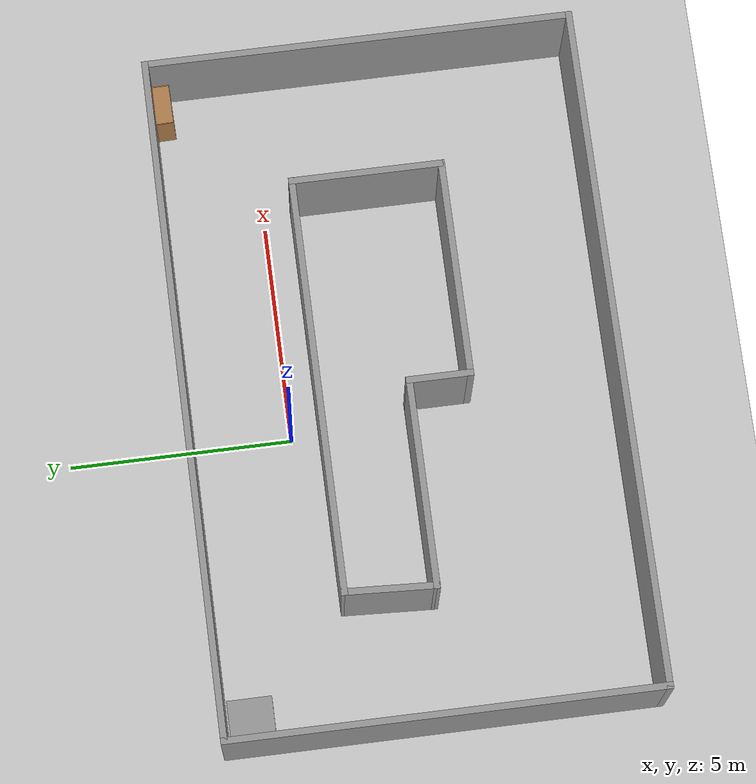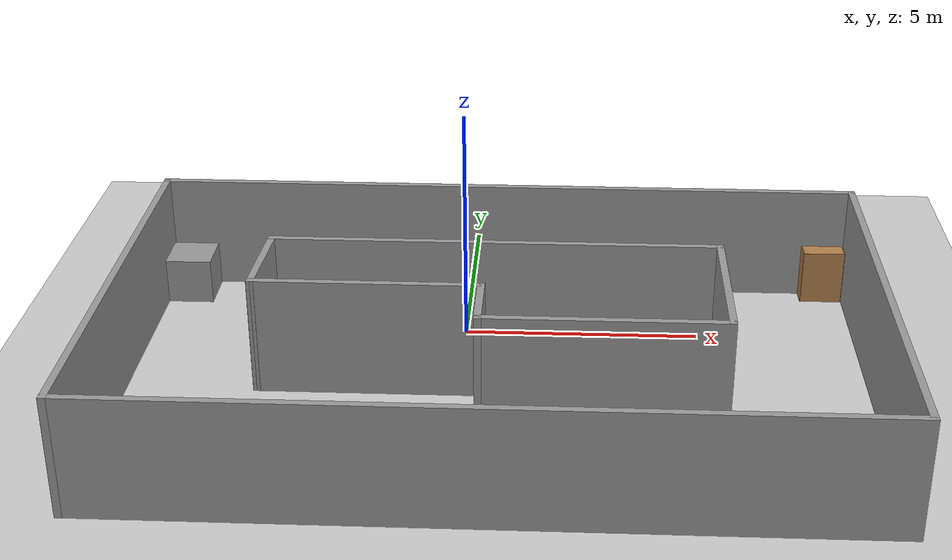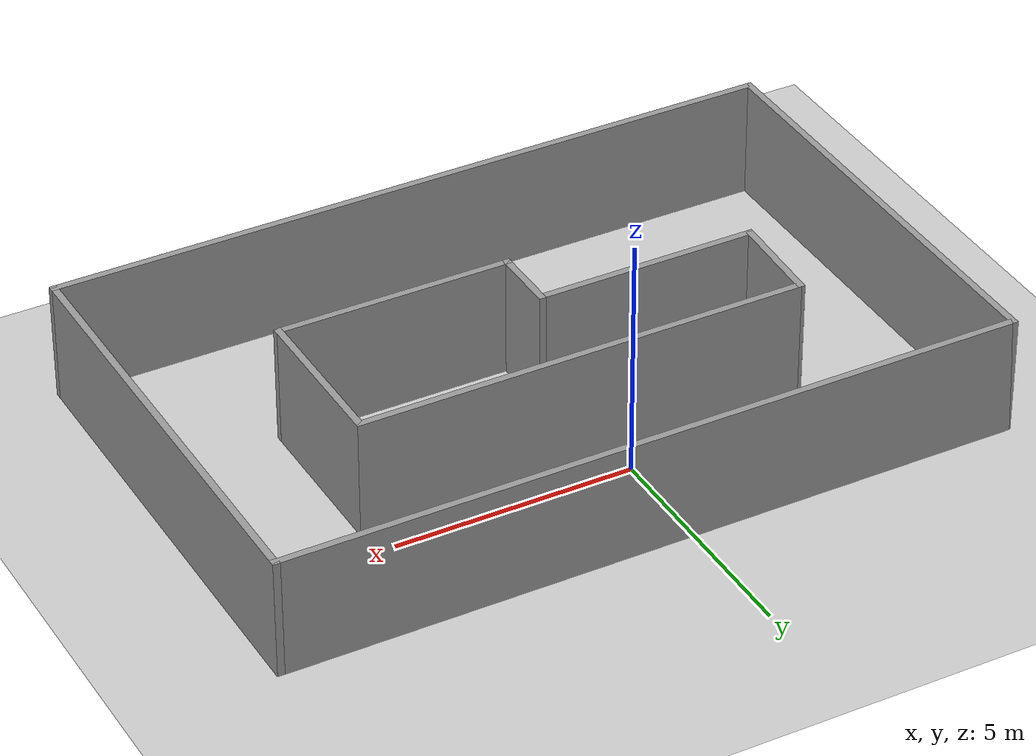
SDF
<sdf version="1.6">
 <world name="default">
  <light name="sun" type="directional">
   <pose>0 0 10 0 -0 0</pose>
   <diffuse>0.8 0.8 0.8 1</diffuse>
   <specular>0.1 0.1 0.1 1</specular>
   <attenuation>
    <range>1000</range>
    <constant>0.9</constant>
    <linear>0.01</linear>
    <quadratic>0.001</quadratic>
   </attenuation>
   <direction>-0.5 0.5 -1</direction>
  </light>
  <model name="ground_plane">
   <static>1</static>
   <link name="link">
    <collision name="collision">
     <geometry><plane><normal>0 0 1</normal><size>100 100</size></plane></geometry>
     <surface><friction><ode><mu>100</mu><mu2>50</mu2></ode></friction></surface>
    </collision>
    <visual name="visual">
     <cast_shadows>0</cast_shadows>
     <geometry><plane><normal>0 0 1</normal><size>100 100</size></plane></geometry>
     <material>
      <script><uri>file://media/materials/scripts/gazebo.material</uri><name>Gazebo/Grey</name></script>
     </material>
    </visual>
   </link>
  </model>
  <gravity>0 0 -9.8</gravity>
  <magnetic_field>6e-06 2.3e-05 -4.2e-05</magnetic_field>
  <atmosphere type="adiabatic"/>
  <physics name="default_physics" default="0" type="ode">
   <max_step_size>0.001</max_step_size>
   <real_time_factor>1</real_time_factor>
   <real_time_update_rate>1000</real_time_update_rate>
  </physics>
  <scene><ambient>0.4 0.4 0.4 1</ambient><background>0.7 0.7 0.7 1</background><shadows>1</shadows></scene>
  <spherical_coordinates>
   <surface_model>EARTH_WGS84</surface_model>
   <latitude_deg>0</latitude_deg>
   <longitude_deg>0</longitude_deg>
   <elevation>0</elevation>
   <heading_deg>0</heading_deg>
  </spherical_coordinates>
  <model name="Untitled">
   <pose>0.777392 -2.53799 0 0 -0 0</pose>
   <link name="Wall_49">
    <collision name="Wall_49_Collision">
     <geometry><box><size>15.5 0.15 2.5</size></box></geometry>
     <pose>0 0 1.25 0 -0 0</pose>
    </collision>
    <visual name="Wall_49_Visual">
     <pose>0 0 1.25 0 -0 0</pose>
     <geometry><box><size>15.5 0.15 2.5</size></box></geometry>
     <material>
      <script><uri>file://media/materials/scripts/gazebo.material</uri><name>Gazebo/Grey</name></script>
      <ambient>1 1 1 1</ambient>
     </material>
    </visual>
    <pose>0 4.8 0 0 -0 0</pose>
   </link>
   <link name="Wall_59">
    <collision name="Wall_59_Collision">
     <geometry><box><size>9.75 0.15 2.5</size></box></geometry>
     <pose>0 0 1.25 0 -0 0</pose>
    </collision>
    <visual name="Wall_59_Visual">
     <pose>0 0 1.25 0 -0 0</pose>
     <geometry><box><size>9.75 0.15 2.5</size></box></geometry>
     <material>
      <script><uri>file://media/materials/scripts/gazebo.material</uri><name>Gazebo/Grey</name></script>
      <ambient>1 1 1 1</ambient>
     </material>
    </visual>
    <pose>7.675 0 0 0 0 -1.5708</pose>
   </link>
   <link name="Wall_60">
    <collision name="Wall_60_Collision">
     <geometry><box><size>15.5 0.15 2.5</size></box></geometry>
     <pose>0 0 1.25 0 -0 0</pose>
    </collision>
    <visual name="Wall_60_Visual">
     <pose>0 0 1.25 0 -0 0</pose>
     <geometry><box><size>15.5 0.15 2.5</size></box></geometry>
     <material>
      <script><uri>file://media/materials/scripts/gazebo.material</uri><name>Gazebo/Grey</name></script>
      <ambient>1 1 1 1</ambient>
     </material>
    </visual>
    <pose>0 -4.8 0 0 -0 3.14159</pose>
   </link>
   <link name="Wall_61">
    <collision name="Wall_61_Collision">
     <geometry><box><size>9.75 0.15 2.5</size></box></geometry>
     <pose>0 0 1.25 0 -0 0</pose>
    </collision>
    <visual name="Wall_61_Visual">
     <pose>0 0 1.25 0 -0 0</pose>
     <geometry><box><size>9.75 0.15 2.5</size></box></geometry>
     <material>
      <script><uri>file://media/materials/scripts/gazebo.material</uri><name>Gazebo/Grey</name></script>
      <ambient>1 1 1 1</ambient>
     </material>
    </visual>
    <pose>-7.675 0 0 0 -0 1.5708</pose>
   </link>
   <link name="Wall_70">
    <collision name="Wall_70_Collision">
     <geometry><box><size>9.5 0.15 2.5</size></box></geometry>
     <pose>0 0 1.25 0 -0 0</pose>
    </collision>
    <visual name="Wall_70_Visual">
     <pose>0 0 1.25 0 -0 0</pose>
     <geometry><box><size>9.5 0.15 2.5</size></box></geometry>
     <material>
      <script><uri>file://media/materials/scripts/gazebo.material</uri><name>Gazebo/Grey</name></script>
      <ambient>1 1 1 1</ambient>
     </material>
    </visual>
    <pose>-0.123556 1.85853 0 0 -0 0</pose>
   </link>
   <link name="Wall_71">
    <collision name="Wall_71_Collision">
     <geometry><box><size>3.5 0.15 2.5</size></box></geometry>
     <pose>0 0 1.25 0 -0 0</pose>
    </collision>
    <visual name="Wall_71_Visual">
     <pose>0 0 1.25 0 -0 0</pose>
     <geometry><box><size>3.5 0.15 2.5</size></box></geometry>
     <material>
      <script><uri>file://media/materials/scripts/gazebo.material</uri><name>Gazebo/Grey</name></script>
      <ambient>1 1 1 1</ambient>
     </material>
    </visual>
    <pose>4.55144 0.183531 0 0 0 -1.5708</pose>
   </link>
   <link name="Wall_72">
    <collision name="Wall_72_Collision">
     <geometry><box><size>5 0.15 2.5</size></box></geometry>
     <pose>0 0 1.25 0 -0 0</pose>
    </collision>
    <visual name="Wall_72_Visual">
     <pose>0 0 1.25 0 -0 0</pose>
     <geometry><box><size>5 0.15 2.5</size></box></geometry>
     <material>
      <script><uri>file://media/materials/scripts/gazebo.material</uri><name>Gazebo/Grey</name></script>
      <ambient>1 1 1 1</ambient>
     </material>
    </visual>
    <pose>2.12644 -1.49147 0 0 -0 3.14159</pose>
   </link>
   <link name="Wall_73">
    <collision name="Wall_73_Collision">
     <geometry><box><size>1.5 0.15 2.5</size></box></geometry>
     <pose>0 0 1.25 0 -0 0</pose>
    </collision>
    <visual name="Wall_73_Visual">
     <pose>0 0 1.25 0 -0 0</pose>
     <geometry><box><size>1.5 0.15 2.5</size></box></geometry>
     <material>
      <script><uri>file://media/materials/scripts/gazebo.material</uri><name>Gazebo/Grey</name></script>
      <ambient>1 1 1 1</ambient>
     </material>
    </visual>
    <pose>-0.298556 -0.816469 0 0 -0 1.5708</pose>
   </link>
   <link name="Wall_74">
    <collision name="Wall_74_Collision">
     <geometry><box><size>4.75 0.15 2.5</size></box></geometry>
     <pose>0 0 1.25 0 -0 0</pose>
    </collision>
    <visual name="Wall_74_Visual">
     <pose>0 0 1.25 0 -0 0</pose>
     <geometry><box><size>4.75 0.15 2.5</size></box></geometry>
     <material>
      <script><uri>file://media/materials/scripts/gazebo.material</uri><name>Gazebo/Grey</name></script>
      <ambient>1 1 1 1</ambient>
     </material>
    </visual>
    <pose>-2.59856 -0.141469 0 0 -0 3.14159</pose>
   </link>
   <link name="Wall_75">
    <collision name="Wall_75_Collision">
     <geometry><box><size>2.1525 0.15 2.5</size></box></geometry>
     <pose>0 0 1.25 0 -0 0</pose>
    </collision>
    <visual name="Wall_75_Visual">
     <pose>0 0 1.25 0 -0 0</pose>
     <geometry><box><size>2.1525 0.15 2.5</size></box></geometry>
     <material>
      <script><uri>file://media/materials/scripts/gazebo.material</uri><name>Gazebo/Grey</name></script>
      <ambient>1 1 1 1</ambient>
     </material>
    </visual>
    <pose>-4.84856 0.858531 0 0 -0 1.52084</pose>
   </link>
   <static>1</static>
  </model>
  <model name="unit_box_0">
   <pose>-6.32262 1.63827 0.499995 1e-05 -0 3e-06</pose>
   <link name="link">
    <inertial>
     <mass>1</mass>
     <inertia>
      <ixx>0.166667</ixx>
      <ixy>0</ixy>
      <ixz>0</ixz>
      <iyy>0.166667</iyy>
      <iyz>0</iyz>
      <izz>0.166667</izz>
     </inertia>
    </inertial>
    <collision name="collision"><geometry><box><size>1 1 1</size></box></geometry></collision>
    <visual name="visual">
     <geometry><box><size>1 1 1</size></box></geometry>
     <material>
      <script><name>Gazebo/Grey</name><uri>file://media/materials/scripts/gazebo.material</uri></script>
     </material>
    </visual>
   </link>
  </model>
  <model name="bookshelf">
   <static>1</static>
   <link name="link">
    <inertial><mass>1</mass></inertial>
    <collision name="back">
     <pose>0 0.005 0.6 0 -0 0</pose>
     <geometry><box><size>0.9 0.01 1.2</size></box></geometry>
    </collision>
    <visual name="visual1">
     <pose>0 0.005 0.6 0 -0 0</pose>
     <geometry><box><size>0.9 0.01 1.2</size></box></geometry>
     <material>
      <script><uri>file://media/materials/scripts/gazebo.material</uri><name>Gazebo/Wood</name></script>
     </material>
    </visual>
    <collision name="left_side">
     <pose>0.45 -0.195 0.6 0 -0 0</pose>
     <geometry><box><size>0.02 0.4 1.2</size></box></geometry>
    </collision>
    <visual name="visual2">
     <pose>0.45 -0.195 0.6 0 -0 0</pose>
     <geometry><box><size>0.02 0.4 1.2</size></box></geometry>
     <material>
      <script><uri>file://media/materials/scripts/gazebo.material</uri><name>Gazebo/Wood</name></script>
     </material>
    </visual>
    <collision name="right_side">
     <pose>-0.45 -0.195 0.6 0 -0 0</pose>
     <geometry><box><size>0.02 0.4 1.2</size></box></geometry>
    </collision>
    <visual name="visual3">
     <pose>-0.45 -0.195 0.6 0 -0 0</pose>
     <geometry><box><size>0.02 0.4 1.2</size></box></geometry>
     <material>
      <script><uri>file://media/materials/scripts/gazebo.material</uri><name>Gazebo/Wood</name></script>
     </material>
    </visual>
    <collision name="bottom">
     <pose>0 -0.195 0.03 0 -0 0</pose>
     <geometry><box><size>0.88 0.4 0.06</size></box></geometry>
    </collision>
    <visual name="visual4">
     <pose>0 -0.195 0.03 0 -0 0</pose>
     <geometry><box><size>0.88 0.4 0.06</size></box></geometry>
     <material>
      <script><uri>file://media/materials/scripts/gazebo.material</uri><name>Gazebo/Wood</name></script>
     </material>
    </visual>
    <collision name="top">
     <pose>0 -0.195 1.19 0 -0 0</pose>
     <geometry><box><size>0.88 0.4 0.02</size></box></geometry>
    </collision>
    <visual name="visual5">
     <pose>0 -0.195 1.19 0 -0 0</pose>
     <geometry><box><size>0.88 0.4 0.02</size></box></geometry>
     <material>
      <script><uri>file://media/materials/scripts/gazebo.material</uri><name>Gazebo/Wood</name></script>
     </material>
    </visual>
    <collision name="low_shelf">
     <pose>0 -0.195 0.43 0 -0 0</pose>
     <geometry><box><size>0.88 0.4 0.02</size></box></geometry>
    </collision>
    <visual name="visual6">
     <pose>0 -0.195 0.43 0 -0 0</pose>
     <geometry><box><size>0.88 0.4 0.02</size></box></geometry>
     <material>
      <script><uri>file://media/materials/scripts/gazebo.material</uri><name>Gazebo/Wood</name></script>
     </material>
    </visual>
    <collision name="high_shelf">
     <pose>0 -0.195 0.8 0 -0 0</pose>
     <geometry><box><size>0.88 0.4 0.02</size></box></geometry>
    </collision>
    <visual name="visual7">
     <pose>0 -0.195 0.8 0 -0 0</pose>
     <geometry><box><size>0.88 0.4 0.02</size></box></geometry>
     <material>
      <script><uri>file://media/materials/scripts/gazebo.material</uri><name>Gazebo/Wood</name></script>
     </material>
    </visual>
   </link>
   <pose>7.91418 1.80014 0 0 0 -3.11803</pose>
  </model>
 </world>
</sdf>
